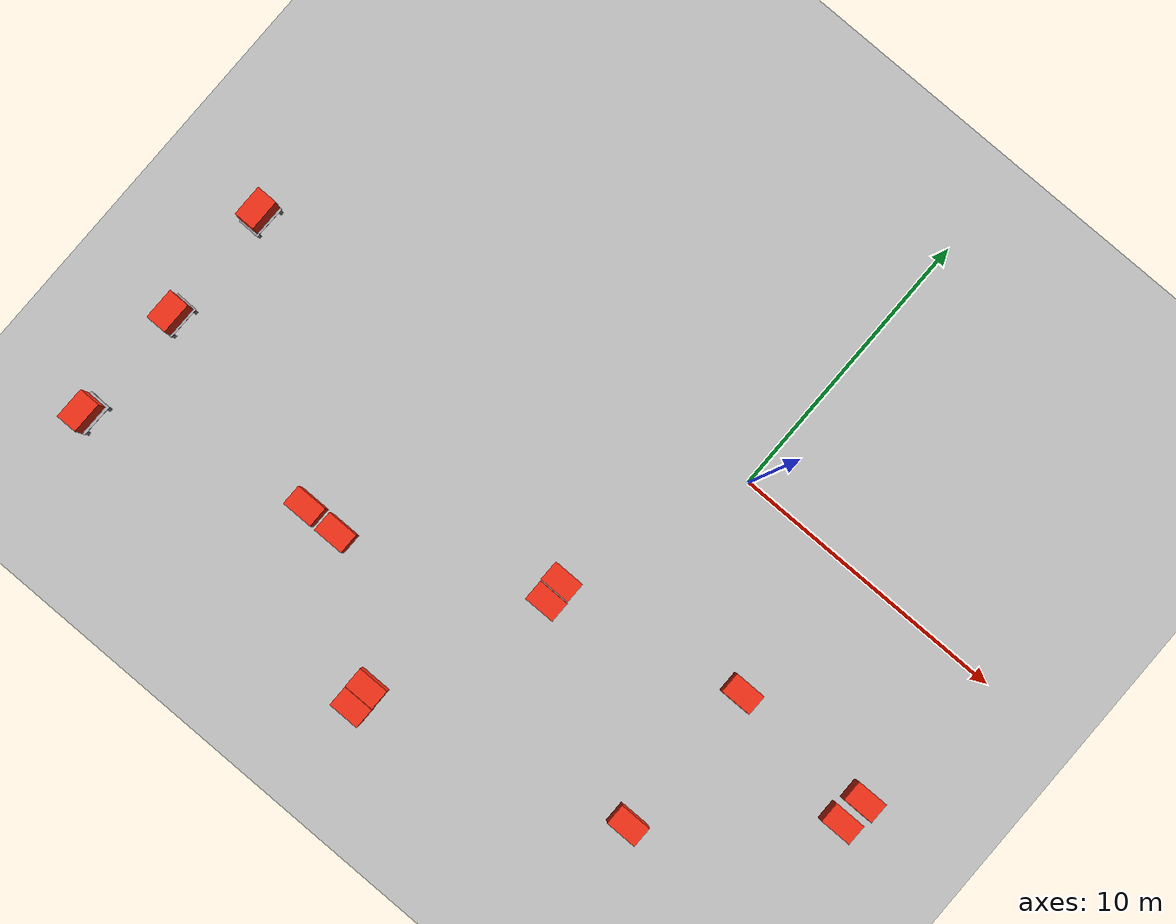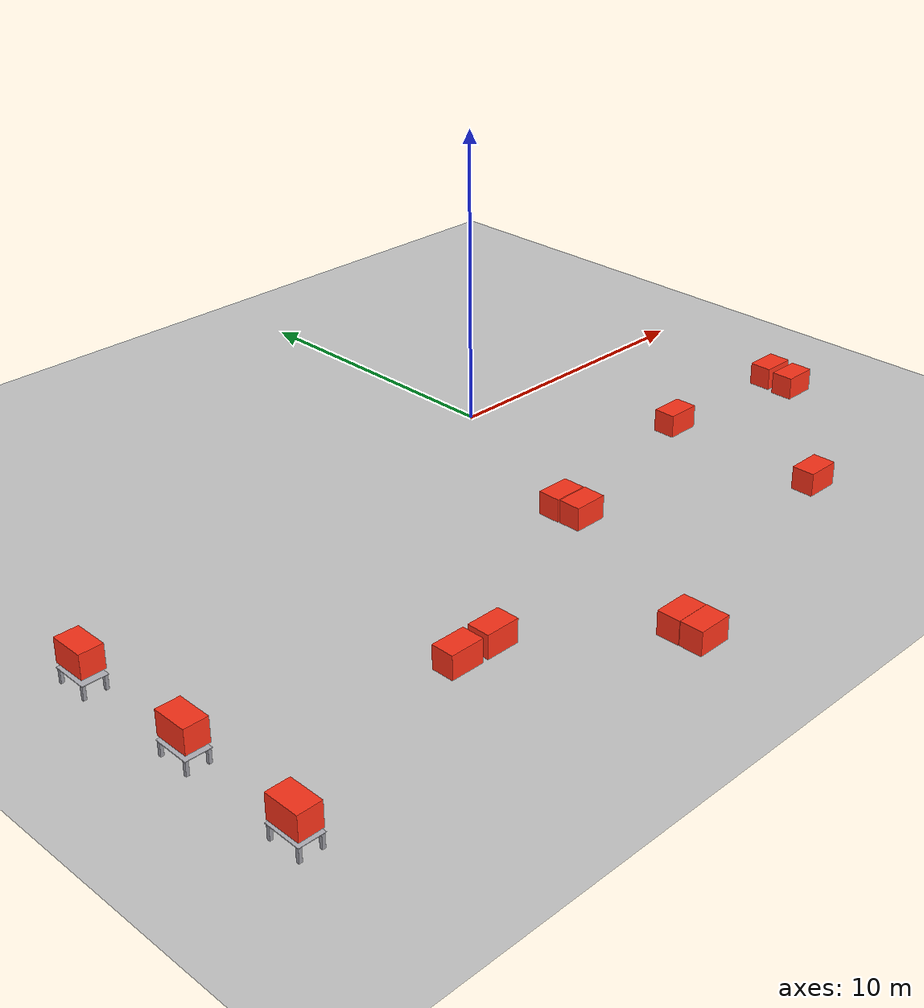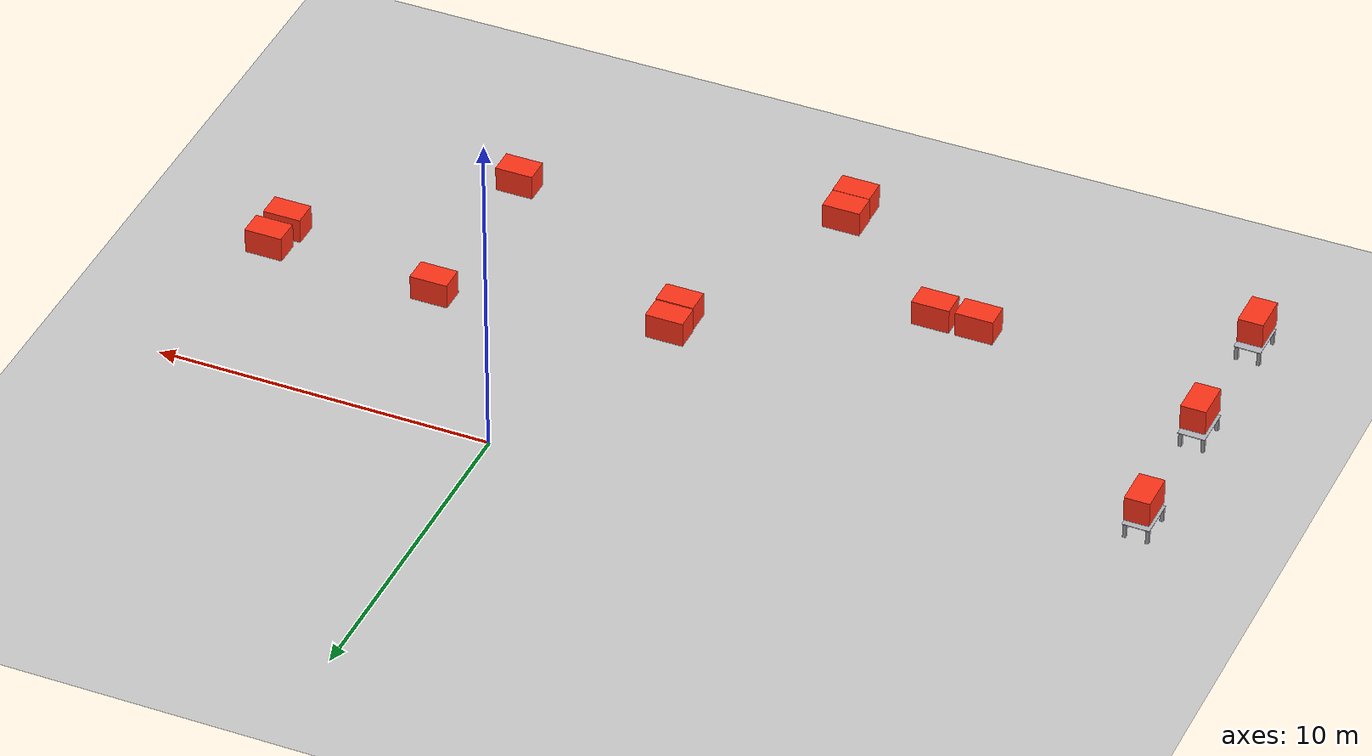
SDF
<sdf version="1.7">
 <world name="default">
  <model name="ground_plane">
   <static>1</static>
   <link name="link">
    <collision name="collision">
     <geometry><plane><normal>0 0 1</normal><size>100 100</size></plane></geometry>
     <surface>
      <contact><collide_bitmask>65535</collide_bitmask></contact>
      <friction><ode><mu>100</mu><mu2>50</mu2></ode></friction>
     </surface>
    </collision>
    <visual name="visual">
     <cast_shadows>0</cast_shadows>
     <geometry><plane><normal>0 0 1</normal><size>100 100</size></plane></geometry>
     <material>
      <script><uri>file://media/materials/scripts/gazebo.material</uri><name>Gazebo/Grey</name></script>
     </material>
    </visual>
   </link>
  </model>
  <model name="stand_1_clone_2">
   <static>0</static>
   <link name="base_link">
    <collision name="top_plate_col">
     <pose>0 0 0.46 0 -0 0</pose>
     <geometry><box><size>1.2 0.8 0.02</size></box></geometry>
    </collision>
    <visual name="top_plate_vis">
     <pose>0 0 0.46 0 -0 0</pose>
     <geometry><box><size>1.2 0.8 0.02</size></box></geometry>
     <material>
      <ambient>0.72 0.72 0.75 1</ambient>
      <diffuse>0.72 0.72 0.75 1</diffuse>
      <specular>0.5 0.5 0.5 1</specular>
     </material>
    </visual>
    <collision name="leg_fl_col">
     <pose>0.52 -0.33 0.225 0 -0 0</pose>
     <geometry><box><size>0.1 0.1 0.45</size></box></geometry>
    </collision>
    <visual name="leg_fl_vis">
     <pose>0.52 -0.33 0.225 0 -0 0</pose>
     <geometry><box><size>0.1 0.1 0.45</size></box></geometry>
     <material><ambient>0.6 0.6 0.63 1</ambient><diffuse>0.6 0.6 0.63 1</diffuse></material>
    </visual>
    <collision name="leg_fr_col">
     <pose>0.52 0.33 0.225 0 -0 0</pose>
     <geometry><box><size>0.1 0.1 0.45</size></box></geometry>
    </collision>
    <visual name="leg_fr_vis">
     <pose>0.52 0.33 0.225 0 -0 0</pose>
     <geometry><box><size>0.1 0.1 0.45</size></box></geometry>
     <material><ambient>0.6 0.6 0.63 1</ambient><diffuse>0.6 0.6 0.63 1</diffuse></material>
    </visual>
    <collision name="leg_rl_col">
     <pose>-0.52 -0.33 0.225 0 -0 0</pose>
     <geometry><box><size>0.1 0.1 0.45</size></box></geometry>
    </collision>
    <visual name="leg_rl_vis">
     <pose>-0.52 -0.33 0.225 0 -0 0</pose>
     <geometry><box><size>0.1 0.1 0.45</size></box></geometry>
     <material><ambient>0.6 0.6 0.63 1</ambient><diffuse>0.6 0.6 0.63 1</diffuse></material>
    </visual>
    <collision name="leg_rr_col">
     <pose>-0.52 0.33 0.225 0 -0 0</pose>
     <geometry><box><size>0.1 0.1 0.45</size></box></geometry>
    </collision>
    <visual name="leg_rr_vis">
     <pose>-0.52 0.33 0.225 0 -0 0</pose>
     <geometry><box><size>0.1 0.1 0.45</size></box></geometry>
     <material><ambient>0.6 0.6 0.63 1</ambient><diffuse>0.6 0.6 0.63 1</diffuse></material>
    </visual>
    <inertial>
     <mass>25</mass>
     <inertia><ixx>1.4</ixx><iyy>2.1</iyy><izz>3.2</izz><ixy>0</ixy><ixz>0</ixz><iyz>0</iyz></inertia>
    </inertial>
   </link>
   <pose>-17.6177 -3.70917 0 -1e-06 -1e-06 -1.58623</pose>
  </model>
  <model name="stand_1_clone_3">
   <static>0</static>
   <link name="base_link">
    <collision name="top_plate_col">
     <pose>0 0 0.46 0 -0 0</pose>
     <geometry><box><size>1.2 0.8 0.02</size></box></geometry>
    </collision>
    <visual name="top_plate_vis">
     <pose>0 0 0.46 0 -0 0</pose>
     <geometry><box><size>1.2 0.8 0.02</size></box></geometry>
     <material>
      <ambient>0.72 0.72 0.75 1</ambient>
      <diffuse>0.72 0.72 0.75 1</diffuse>
      <specular>0.5 0.5 0.5 1</specular>
     </material>
    </visual>
    <collision name="leg_fl_col">
     <pose>0.52 -0.33 0.225 0 -0 0</pose>
     <geometry><box><size>0.1 0.1 0.45</size></box></geometry>
    </collision>
    <visual name="leg_fl_vis">
     <pose>0.52 -0.33 0.225 0 -0 0</pose>
     <geometry><box><size>0.1 0.1 0.45</size></box></geometry>
     <material><ambient>0.6 0.6 0.63 1</ambient><diffuse>0.6 0.6 0.63 1</diffuse></material>
    </visual>
    <collision name="leg_fr_col">
     <pose>0.52 0.33 0.225 0 -0 0</pose>
     <geometry><box><size>0.1 0.1 0.45</size></box></geometry>
    </collision>
    <visual name="leg_fr_vis">
     <pose>0.52 0.33 0.225 0 -0 0</pose>
     <geometry><box><size>0.1 0.1 0.45</size></box></geometry>
     <material><ambient>0.6 0.6 0.63 1</ambient><diffuse>0.6 0.6 0.63 1</diffuse></material>
    </visual>
    <collision name="leg_rl_col">
     <pose>-0.52 -0.33 0.225 0 -0 0</pose>
     <geometry><box><size>0.1 0.1 0.45</size></box></geometry>
    </collision>
    <visual name="leg_rl_vis">
     <pose>-0.52 -0.33 0.225 0 -0 0</pose>
     <geometry><box><size>0.1 0.1 0.45</size></box></geometry>
     <material><ambient>0.6 0.6 0.63 1</ambient><diffuse>0.6 0.6 0.63 1</diffuse></material>
    </visual>
    <collision name="leg_rr_col">
     <pose>-0.52 0.33 0.225 0 -0 0</pose>
     <geometry><box><size>0.1 0.1 0.45</size></box></geometry>
    </collision>
    <visual name="leg_rr_vis">
     <pose>-0.52 0.33 0.225 0 -0 0</pose>
     <geometry><box><size>0.1 0.1 0.45</size></box></geometry>
     <material><ambient>0.6 0.6 0.63 1</ambient><diffuse>0.6 0.6 0.63 1</diffuse></material>
    </visual>
    <inertial>
     <mass>25</mass>
     <inertia><ixx>1.4</ixx><iyy>2.1</iyy><izz>3.2</izz><ixy>0</ixy><ixz>0</ixz><iyz>0</iyz></inertia>
    </inertial>
   </link>
   <pose>-17.5863 -7.96395 -0 -0 -0 -1.58665</pose>
  </model>
  <model name="stand_1_clone_4">
   <static>0</static>
   <link name="base_link">
    <collision name="top_plate_col">
     <pose>0 0 0.46 0 -0 0</pose>
     <geometry><box><size>1.2 0.8 0.02</size></box></geometry>
    </collision>
    <visual name="top_plate_vis">
     <pose>0 0 0.46 0 -0 0</pose>
     <geometry><box><size>1.2 0.8 0.02</size></box></geometry>
     <material>
      <ambient>0.72 0.72 0.75 1</ambient>
      <diffuse>0.72 0.72 0.75 1</diffuse>
      <specular>0.5 0.5 0.5 1</specular>
     </material>
    </visual>
    <collision name="leg_fl_col">
     <pose>0.52 -0.33 0.225 0 -0 0</pose>
     <geometry><box><size>0.1 0.1 0.45</size></box></geometry>
    </collision>
    <visual name="leg_fl_vis">
     <pose>0.52 -0.33 0.225 0 -0 0</pose>
     <geometry><box><size>0.1 0.1 0.45</size></box></geometry>
     <material><ambient>0.6 0.6 0.63 1</ambient><diffuse>0.6 0.6 0.63 1</diffuse></material>
    </visual>
    <collision name="leg_fr_col">
     <pose>0.52 0.33 0.225 0 -0 0</pose>
     <geometry><box><size>0.1 0.1 0.45</size></box></geometry>
    </collision>
    <visual name="leg_fr_vis">
     <pose>0.52 0.33 0.225 0 -0 0</pose>
     <geometry><box><size>0.1 0.1 0.45</size></box></geometry>
     <material><ambient>0.6 0.6 0.63 1</ambient><diffuse>0.6 0.6 0.63 1</diffuse></material>
    </visual>
    <collision name="leg_rl_col">
     <pose>-0.52 -0.33 0.225 0 -0 0</pose>
     <geometry><box><size>0.1 0.1 0.45</size></box></geometry>
    </collision>
    <visual name="leg_rl_vis">
     <pose>-0.52 -0.33 0.225 0 -0 0</pose>
     <geometry><box><size>0.1 0.1 0.45</size></box></geometry>
     <material><ambient>0.6 0.6 0.63 1</ambient><diffuse>0.6 0.6 0.63 1</diffuse></material>
    </visual>
    <collision name="leg_rr_col">
     <pose>-0.52 0.33 0.225 0 -0 0</pose>
     <geometry><box><size>0.1 0.1 0.45</size></box></geometry>
    </collision>
    <visual name="leg_rr_vis">
     <pose>-0.52 0.33 0.225 0 -0 0</pose>
     <geometry><box><size>0.1 0.1 0.45</size></box></geometry>
     <material><ambient>0.6 0.6 0.63 1</ambient><diffuse>0.6 0.6 0.63 1</diffuse></material>
    </visual>
    <inertial>
     <mass>25</mass>
     <inertia><ixx>1.4</ixx><iyy>2.1</iyy><izz>3.2</izz><ixy>0</ixy><ixz>0</ixz><iyz>0</iyz></inertia>
    </inertial>
   </link>
   <pose>-17.6338 -12.1583 -3e-06 1e-05 -0 -1.58729</pose>
  </model>
  <model name="payload_box">
   <link name="link">
    <inertial>
     <mass>15</mass>
     <inertia><ixx>2.32332</ixx><ixy>0</ixy><ixz>0</ixz><iyy>1.43272</iyy><iyz>0</iyz><izz>2.2858</izz></inertia>
    </inertial>
    <visual name="visual">
     <geometry><box><size>0.747047 1.12719 0.766877</size></box></geometry>
     <material>
      <script><name>Gazebo/Grey</name><uri>file://media/materials/scripts/gazebo.material</uri></script>
      <shader type="pixel"><normal_map>__default__</normal_map></shader>
      <ambient>1 0.2 0.1 0</ambient>
      <diffuse>0.7 0.7 0.7 1</diffuse>
      <specular>0.01 0.01 0.01 1</specular>
      <emissive>0 0 0 1</emissive>
     </material>
    </visual>
    <collision name="collision">
     <geometry><box><size>0.747047 1.12719 0.766877</size></box></geometry>
     <surface>
      <friction>
       <ode><mu>1</mu><mu2>1</mu2><fdir1>0 0 0</fdir1><slip1>0</slip1><slip2>0</slip2></ode>
       <torsional>
        <coefficient>1</coefficient>
        <patch_radius>0</patch_radius>
        <surface_radius>0</surface_radius>
        <use_patch_radius>1</use_patch_radius>
        <ode><slip>0</slip></ode>
       </torsional>
      </friction>
      <bounce><restitution_coefficient>0</restitution_coefficient><threshold>1e+06</threshold></bounce>
      <contact>
       <collide_without_contact>0</collide_without_contact>
       <collide_without_contact_bitmask>1</collide_without_contact_bitmask>
       <collide_bitmask>1</collide_bitmask>
       <ode>
        <soft_cfm>0</soft_cfm>
        <soft_erp>0.2</soft_erp>
        <kp>1e+13</kp>
        <kd>1</kd>
        <max_vel>0.01</max_vel>
        <min_depth>0</min_depth>
       </ode>
       <bullet>
        <split_impulse>1</split_impulse>
        <split_impulse_penetration_threshold>-0.01</split_impulse_penetration_threshold>
        <soft_cfm>0</soft_cfm>
        <soft_erp>0.2</soft_erp>
        <kp>1e+13</kp>
        <kd>1</kd>
       </bullet>
      </contact>
     </surface>
    </collision>
   </link>
   <static>0</static>
   <pose>-17.6602 -12.1959 0.997472 2.4e-05 -7.3e-05 -0.004043</pose>
  </model>
  <model name="payload_box_clone">
   <link name="link">
    <inertial>
     <mass>15</mass>
     <inertia><ixx>2.32332</ixx><ixy>0</ixy><ixz>0</ixz><iyy>1.43272</iyy><iyz>0</iyz><izz>2.2858</izz></inertia>
    </inertial>
    <visual name="visual">
     <geometry><box><size>0.747047 1.12719 0.766877</size></box></geometry>
     <material>
      <script><name>Gazebo/Grey</name><uri>file://media/materials/scripts/gazebo.material</uri></script>
      <shader type="pixel"><normal_map>__default__</normal_map></shader>
      <ambient>1 0.2 0.1 0</ambient>
      <diffuse>0.7 0.7 0.7 1</diffuse>
      <specular>0.01 0.01 0.01 1</specular>
      <emissive>0 0 0 1</emissive>
     </material>
    </visual>
    <collision name="collision">
     <geometry><box><size>0.747047 1.12719 0.766877</size></box></geometry>
     <surface>
      <friction>
       <ode><mu>1</mu><mu2>1</mu2><fdir1>0 0 0</fdir1><slip1>0</slip1><slip2>0</slip2></ode>
       <torsional>
        <coefficient>1</coefficient>
        <patch_radius>0</patch_radius>
        <surface_radius>0</surface_radius>
        <use_patch_radius>1</use_patch_radius>
        <ode><slip>0</slip></ode>
       </torsional>
      </friction>
      <bounce><restitution_coefficient>0</restitution_coefficient><threshold>1e+06</threshold></bounce>
      <contact>
       <collide_without_contact>0</collide_without_contact>
       <collide_without_contact_bitmask>1</collide_without_contact_bitmask>
       <collide_bitmask>1</collide_bitmask>
       <ode>
        <soft_cfm>0</soft_cfm>
        <soft_erp>0.2</soft_erp>
        <kp>1e+13</kp>
        <kd>1</kd>
        <max_vel>0.01</max_vel>
        <min_depth>0</min_depth>
       </ode>
       <bullet>
        <split_impulse>1</split_impulse>
        <split_impulse_penetration_threshold>-0.01</split_impulse_penetration_threshold>
        <soft_cfm>0</soft_cfm>
        <soft_erp>0.2</soft_erp>
        <kp>1e+13</kp>
        <kd>1</kd>
       </bullet>
      </contact>
     </surface>
    </collision>
   </link>
   <static>0</static>
   <pose>-17.5844 -7.98384 0.99743 1.3e-05 -3.9e-05 -0.003706</pose>
  </model>
  <model name="payload_box_clone_0">
   <link name="link">
    <inertial>
     <mass>15</mass>
     <inertia><ixx>2.32332</ixx><ixy>0</ixy><ixz>0</ixz><iyy>1.43272</iyy><iyz>0</iyz><izz>2.2858</izz></inertia>
    </inertial>
    <visual name="visual">
     <geometry><box><size>0.747047 1.12719 0.766877</size></box></geometry>
     <material>
      <script><name>Gazebo/Grey</name><uri>file://media/materials/scripts/gazebo.material</uri></script>
      <shader type="pixel"><normal_map>__default__</normal_map></shader>
      <ambient>1 0.2 0.1 0</ambient>
      <diffuse>0.7 0.7 0.7 1</diffuse>
      <specular>0.01 0.01 0.01 1</specular>
      <emissive>0 0 0 1</emissive>
     </material>
    </visual>
    <collision name="collision">
     <geometry><box><size>0.747047 1.12719 0.766877</size></box></geometry>
     <surface>
      <friction>
       <ode><mu>1</mu><mu2>1</mu2><fdir1>0 0 0</fdir1><slip1>0</slip1><slip2>0</slip2></ode>
       <torsional>
        <coefficient>1</coefficient>
        <patch_radius>0</patch_radius>
        <surface_radius>0</surface_radius>
        <use_patch_radius>1</use_patch_radius>
        <ode><slip>0</slip></ode>
       </torsional>
      </friction>
      <bounce><restitution_coefficient>0</restitution_coefficient><threshold>1e+06</threshold></bounce>
      <contact>
       <collide_without_contact>0</collide_without_contact>
       <collide_without_contact_bitmask>1</collide_without_contact_bitmask>
       <collide_bitmask>1</collide_bitmask>
       <ode>
        <soft_cfm>0</soft_cfm>
        <soft_erp>0.2</soft_erp>
        <kp>1e+13</kp>
        <kd>1</kd>
        <max_vel>0.01</max_vel>
        <min_depth>0</min_depth>
       </ode>
       <bullet>
        <split_impulse>1</split_impulse>
        <split_impulse_penetration_threshold>-0.01</split_impulse_penetration_threshold>
        <soft_cfm>0</soft_cfm>
        <soft_erp>0.2</soft_erp>
        <kp>1e+13</kp>
        <kd>1</kd>
       </bullet>
      </contact>
     </surface>
    </collision>
   </link>
   <static>0</static>
   <pose>-17.615 -3.68922 0.997434 2e-06 1.9e-05 -0.000489</pose>
  </model>
  <model name="payload_box_clone_5">
   <link name="link">
    <inertial>
     <mass>15</mass>
     <inertia><ixx>2.32332</ixx><ixy>0</ixy><ixz>0</ixz><iyy>1.43272</iyy><iyz>0</iyz><izz>2.2858</izz></inertia>
    </inertial>
    <visual name="visual">
     <geometry><box><size>0.747047 1.12719 0.766877</size></box></geometry>
     <material>
      <script><name>Gazebo/Grey</name><uri>file://media/materials/scripts/gazebo.material</uri></script>
      <shader type="pixel"><normal_map>__default__</normal_map></shader>
      <ambient>1 0.2 0.1 0</ambient>
      <diffuse>0.7 0.7 0.7 1</diffuse>
      <specular>0.01 0.01 0.01 1</specular>
      <emissive>0 0 0 1</emissive>
     </material>
    </visual>
    <collision name="collision">
     <geometry><box><size>0.747047 1.12719 0.766877</size></box></geometry>
     <surface>
      <friction>
       <ode><mu>1</mu><mu2>1</mu2><fdir1>0 0 0</fdir1><slip1>0</slip1><slip2>0</slip2></ode>
       <torsional>
        <coefficient>1</coefficient>
        <patch_radius>0</patch_radius>
        <surface_radius>0</surface_radius>
        <use_patch_radius>1</use_patch_radius>
        <ode><slip>0</slip></ode>
       </torsional>
      </friction>
      <bounce><restitution_coefficient>0</restitution_coefficient><threshold>1e+06</threshold></bounce>
      <contact>
       <collide_without_contact>0</collide_without_contact>
       <collide_without_contact_bitmask>1</collide_without_contact_bitmask>
       <collide_bitmask>1</collide_bitmask>
       <ode>
        <soft_cfm>0</soft_cfm>
        <soft_erp>0.2</soft_erp>
        <kp>1e+13</kp>
        <kd>1</kd>
        <max_vel>0.01</max_vel>
        <min_depth>0</min_depth>
       </ode>
       <bullet>
        <split_impulse>1</split_impulse>
        <split_impulse_penetration_threshold>-0.01</split_impulse_penetration_threshold>
        <soft_cfm>0</soft_cfm>
        <soft_erp>0.2</soft_erp>
        <kp>1e+13</kp>
        <kd>1</kd>
       </bullet>
      </contact>
     </surface>
    </collision>
   </link>
   <static>0</static>
   <pose>-5.04823 -13.7583 0.383438 0 -0 1.5709</pose>
  </model>
  <model name="payload_box_clone_5_clone">
   <link name="link">
    <inertial>
     <mass>15</mass>
     <inertia><ixx>2.32332</ixx><ixy>0</ixy><ixz>0</ixz><iyy>1.43272</iyy><iyz>0</iyz><izz>2.2858</izz></inertia>
    </inertial>
    <visual name="visual">
     <geometry><box><size>0.747047 1.12719 0.766877</size></box></geometry>
     <material>
      <script><name>Gazebo/Grey</name><uri>file://media/materials/scripts/gazebo.material</uri></script>
      <shader type="pixel"><normal_map>__default__</normal_map></shader>
      <ambient>1 0.2 0.1 0</ambient>
      <diffuse>0.7 0.7 0.7 1</diffuse>
      <specular>0.01 0.01 0.01 1</specular>
      <emissive>0 0 0 1</emissive>
     </material>
    </visual>
    <collision name="collision">
     <geometry><box><size>0.747047 1.12719 0.766877</size></box></geometry>
     <surface>
      <friction>
       <ode><mu>1</mu><mu2>1</mu2><fdir1>0 0 0</fdir1><slip1>0</slip1><slip2>0</slip2></ode>
       <torsional>
        <coefficient>1</coefficient>
        <patch_radius>0</patch_radius>
        <surface_radius>0</surface_radius>
        <use_patch_radius>1</use_patch_radius>
        <ode><slip>0</slip></ode>
       </torsional>
      </friction>
      <bounce><restitution_coefficient>0</restitution_coefficient><threshold>1e+06</threshold></bounce>
      <contact>
       <collide_without_contact>0</collide_without_contact>
       <collide_without_contact_bitmask>1</collide_without_contact_bitmask>
       <collide_bitmask>1</collide_bitmask>
       <ode>
        <soft_cfm>0</soft_cfm>
        <soft_erp>0.2</soft_erp>
        <kp>1e+13</kp>
        <kd>1</kd>
        <max_vel>0.01</max_vel>
        <min_depth>0</min_depth>
       </ode>
       <bullet>
        <split_impulse>1</split_impulse>
        <split_impulse_penetration_threshold>-0.01</split_impulse_penetration_threshold>
        <soft_cfm>0</soft_cfm>
        <soft_erp>0.2</soft_erp>
        <kp>1e+13</kp>
        <kd>1</kd>
       </bullet>
      </contact>
     </surface>
    </collision>
   </link>
   <static>0</static>
   <pose>-5.06235 -13.0022 0.383438 0 -0 1.5709</pose>
  </model>
  <model name="payload_box_clone_5_clone_0">
   <link name="link">
    <inertial>
     <mass>15</mass>
     <inertia><ixx>2.32332</ixx><ixy>0</ixy><ixz>0</ixz><iyy>1.43272</iyy><iyz>0</iyz><izz>2.2858</izz></inertia>
    </inertial>
    <visual name="visual">
     <geometry><box><size>0.747047 1.12719 0.766877</size></box></geometry>
     <material>
      <script><name>Gazebo/Grey</name><uri>file://media/materials/scripts/gazebo.material</uri></script>
      <shader type="pixel"><normal_map>__default__</normal_map></shader>
      <ambient>1 0.2 0.1 0</ambient>
      <diffuse>0.7 0.7 0.7 1</diffuse>
      <specular>0.01 0.01 0.01 1</specular>
      <emissive>0 0 0 1</emissive>
     </material>
    </visual>
    <collision name="collision">
     <geometry><box><size>0.747047 1.12719 0.766877</size></box></geometry>
     <surface>
      <friction>
       <ode><mu>1</mu><mu2>1</mu2><fdir1>0 0 0</fdir1><slip1>0</slip1><slip2>0</slip2></ode>
       <torsional>
        <coefficient>1</coefficient>
        <patch_radius>0</patch_radius>
        <surface_radius>0</surface_radius>
        <use_patch_radius>1</use_patch_radius>
        <ode><slip>0</slip></ode>
       </torsional>
      </friction>
      <bounce><restitution_coefficient>0</restitution_coefficient><threshold>1e+06</threshold></bounce>
      <contact>
       <collide_without_contact>0</collide_without_contact>
       <collide_without_contact_bitmask>1</collide_without_contact_bitmask>
       <collide_bitmask>1</collide_bitmask>
       <ode>
        <soft_cfm>0</soft_cfm>
        <soft_erp>0.2</soft_erp>
        <kp>1e+13</kp>
        <kd>1</kd>
        <max_vel>0.01</max_vel>
        <min_depth>0</min_depth>
       </ode>
       <bullet>
        <split_impulse>1</split_impulse>
        <split_impulse_penetration_threshold>-0.01</split_impulse_penetration_threshold>
        <soft_cfm>0</soft_cfm>
        <soft_erp>0.2</soft_erp>
        <kp>1e+13</kp>
        <kd>1</kd>
       </bullet>
      </contact>
     </surface>
    </collision>
   </link>
   <static>0</static>
   <pose>4.06717 -10.8872 0.383438 0 -0 1.5709</pose>
  </model>
  <model name="payload_box_clone_5_clone_1">
   <link name="link">
    <inertial>
     <mass>15</mass>
     <inertia><ixx>2.32332</ixx><ixy>0</ixy><ixz>0</ixz><iyy>1.43272</iyy><iyz>0</iyz><izz>2.2858</izz></inertia>
    </inertial>
    <visual name="visual">
     <geometry><box><size>0.747047 1.12719 0.766877</size></box></geometry>
     <material>
      <script><name>Gazebo/Grey</name><uri>file://media/materials/scripts/gazebo.material</uri></script>
      <shader type="pixel"><normal_map>__default__</normal_map></shader>
      <ambient>1 0.2 0.1 0</ambient>
      <diffuse>0.7 0.7 0.7 1</diffuse>
      <specular>0.01 0.01 0.01 1</specular>
      <emissive>0 0 0 1</emissive>
     </material>
    </visual>
    <collision name="collision">
     <geometry><box><size>0.747047 1.12719 0.766877</size></box></geometry>
     <surface>
      <friction>
       <ode><mu>1</mu><mu2>1</mu2><fdir1>0 0 0</fdir1><slip1>0</slip1><slip2>0</slip2></ode>
       <torsional>
        <coefficient>1</coefficient>
        <patch_radius>0</patch_radius>
        <surface_radius>0</surface_radius>
        <use_patch_radius>1</use_patch_radius>
        <ode><slip>0</slip></ode>
       </torsional>
      </friction>
      <bounce><restitution_coefficient>0</restitution_coefficient><threshold>1e+06</threshold></bounce>
      <contact>
       <collide_without_contact>0</collide_without_contact>
       <collide_without_contact_bitmask>1</collide_without_contact_bitmask>
       <collide_bitmask>1</collide_bitmask>
       <ode>
        <soft_cfm>0</soft_cfm>
        <soft_erp>0.2</soft_erp>
        <kp>1e+13</kp>
        <kd>1</kd>
        <max_vel>0.01</max_vel>
        <min_depth>0</min_depth>
       </ode>
       <bullet>
        <split_impulse>1</split_impulse>
        <split_impulse_penetration_threshold>-0.01</split_impulse_penetration_threshold>
        <soft_cfm>0</soft_cfm>
        <soft_erp>0.2</soft_erp>
        <kp>1e+13</kp>
        <kd>1</kd>
       </bullet>
      </contact>
     </surface>
    </collision>
   </link>
   <static>0</static>
   <pose>-10.3483 -9.87985 0.383439 0 -0 1.57085</pose>
  </model>
  <model name="payload_box_clone_5_clone_2">
   <link name="link">
    <inertial>
     <mass>15</mass>
     <inertia><ixx>2.32332</ixx><ixy>0</ixy><ixz>0</ixz><iyy>1.43272</iyy><iyz>0</iyz><izz>2.2858</izz></inertia>
    </inertial>
    <visual name="visual">
     <geometry><box><size>0.747047 1.12719 0.766877</size></box></geometry>
     <material>
      <script><name>Gazebo/Grey</name><uri>file://media/materials/scripts/gazebo.material</uri></script>
      <shader type="pixel"><normal_map>__default__</normal_map></shader>
      <ambient>1 0.2 0.1 0</ambient>
      <diffuse>0.7 0.7 0.7 1</diffuse>
      <specular>0.01 0.01 0.01 1</specular>
      <emissive>0 0 0 1</emissive>
     </material>
    </visual>
    <collision name="collision">
     <geometry><box><size>0.747047 1.12719 0.766877</size></box></geometry>
     <surface>
      <friction>
       <ode><mu>1</mu><mu2>1</mu2><fdir1>0 0 0</fdir1><slip1>0</slip1><slip2>0</slip2></ode>
       <torsional>
        <coefficient>1</coefficient>
        <patch_radius>0</patch_radius>
        <surface_radius>0</surface_radius>
        <use_patch_radius>1</use_patch_radius>
        <ode><slip>0</slip></ode>
       </torsional>
      </friction>
      <bounce><restitution_coefficient>0</restitution_coefficient><threshold>1e+06</threshold></bounce>
      <contact>
       <collide_without_contact>0</collide_without_contact>
       <collide_without_contact_bitmask>1</collide_without_contact_bitmask>
       <collide_bitmask>1</collide_bitmask>
       <ode>
        <soft_cfm>0</soft_cfm>
        <soft_erp>0.2</soft_erp>
        <kp>1e+13</kp>
        <kd>1</kd>
        <max_vel>0.01</max_vel>
        <min_depth>0</min_depth>
       </ode>
       <bullet>
        <split_impulse>1</split_impulse>
        <split_impulse_penetration_threshold>-0.01</split_impulse_penetration_threshold>
        <soft_cfm>0</soft_cfm>
        <soft_erp>0.2</soft_erp>
        <kp>1e+13</kp>
        <kd>1</kd>
       </bullet>
      </contact>
     </surface>
    </collision>
   </link>
   <static>0</static>
   <pose>-9.04688 -9.87985 0.383439 0 -0 1.57085</pose>
  </model>
  <model name="payload_box_clone_5_clone_3">
   <link name="link">
    <inertial>
     <mass>15</mass>
     <inertia><ixx>2.32332</ixx><ixy>0</ixy><ixz>0</ixz><iyy>1.43272</iyy><iyz>0</iyz><izz>2.2858</izz></inertia>
    </inertial>
    <visual name="visual">
     <geometry><box><size>0.747047 1.12719 0.766877</size></box></geometry>
     <material>
      <script><name>Gazebo/Grey</name><uri>file://media/materials/scripts/gazebo.material</uri></script>
      <shader type="pixel"><normal_map>__default__</normal_map></shader>
      <ambient>1 0.2 0.1 0</ambient>
      <diffuse>0.7 0.7 0.7 1</diffuse>
      <specular>0.01 0.01 0.01 1</specular>
      <emissive>0 0 0 1</emissive>
     </material>
    </visual>
    <collision name="collision">
     <geometry><box><size>0.747047 1.12719 0.766877</size></box></geometry>
     <surface>
      <friction>
       <ode><mu>1</mu><mu2>1</mu2><fdir1>0 0 0</fdir1><slip1>0</slip1><slip2>0</slip2></ode>
       <torsional>
        <coefficient>1</coefficient>
        <patch_radius>0</patch_radius>
        <surface_radius>0</surface_radius>
        <use_patch_radius>1</use_patch_radius>
        <ode><slip>0</slip></ode>
       </torsional>
      </friction>
      <bounce><restitution_coefficient>0</restitution_coefficient><threshold>1e+06</threshold></bounce>
      <contact>
       <collide_without_contact>0</collide_without_contact>
       <collide_without_contact_bitmask>1</collide_without_contact_bitmask>
       <collide_bitmask>1</collide_bitmask>
       <ode>
        <soft_cfm>0</soft_cfm>
        <soft_erp>0.2</soft_erp>
        <kp>1e+13</kp>
        <kd>1</kd>
        <max_vel>0.01</max_vel>
        <min_depth>0</min_depth>
       </ode>
       <bullet>
        <split_impulse>1</split_impulse>
        <split_impulse_penetration_threshold>-0.01</split_impulse_penetration_threshold>
        <soft_cfm>0</soft_cfm>
        <soft_erp>0.2</soft_erp>
        <kp>1e+13</kp>
        <kd>1</kd>
       </bullet>
      </contact>
     </surface>
    </collision>
   </link>
   <static>0</static>
   <pose>-2.54038 -6.392 0.383438 0 -0 1.5709</pose>
  </model>
  <model name="payload_box_clone_5_clone_4">
   <link name="link">
    <inertial>
     <mass>15</mass>
     <inertia><ixx>2.32332</ixx><ixy>0</ixy><ixz>0</ixz><iyy>1.43272</iyy><iyz>0</iyz><izz>2.2858</izz></inertia>
    </inertial>
    <visual name="visual">
     <geometry><box><size>0.747047 1.12719 0.766877</size></box></geometry>
     <material>
      <script><name>Gazebo/Grey</name><uri>file://media/materials/scripts/gazebo.material</uri></script>
      <shader type="pixel"><normal_map>__default__</normal_map></shader>
      <ambient>1 0.2 0.1 0</ambient>
      <diffuse>0.7 0.7 0.7 1</diffuse>
      <specular>0.01 0.01 0.01 1</specular>
      <emissive>0 0 0 1</emissive>
     </material>
    </visual>
    <collision name="collision">
     <geometry><box><size>0.747047 1.12719 0.766877</size></box></geometry>
     <surface>
      <friction>
       <ode><mu>1</mu><mu2>1</mu2><fdir1>0 0 0</fdir1><slip1>0</slip1><slip2>0</slip2></ode>
       <torsional>
        <coefficient>1</coefficient>
        <patch_radius>0</patch_radius>
        <surface_radius>0</surface_radius>
        <use_patch_radius>1</use_patch_radius>
        <ode><slip>0</slip></ode>
       </torsional>
      </friction>
      <bounce><restitution_coefficient>0</restitution_coefficient><threshold>1e+06</threshold></bounce>
      <contact>
       <collide_without_contact>0</collide_without_contact>
       <collide_without_contact_bitmask>1</collide_without_contact_bitmask>
       <collide_bitmask>1</collide_bitmask>
       <ode>
        <soft_cfm>0</soft_cfm>
        <soft_erp>0.2</soft_erp>
        <kp>1e+13</kp>
        <kd>1</kd>
        <max_vel>0.01</max_vel>
        <min_depth>0</min_depth>
       </ode>
       <bullet>
        <split_impulse>1</split_impulse>
        <split_impulse_penetration_threshold>-0.01</split_impulse_penetration_threshold>
        <soft_cfm>0</soft_cfm>
        <soft_erp>0.2</soft_erp>
        <kp>1e+13</kp>
        <kd>1</kd>
       </bullet>
      </contact>
     </surface>
    </collision>
   </link>
   <static>0</static>
   <pose>-2.51466 -7.17386 0.383438 0 -0 1.5709</pose>
  </model>
  <model name="payload_box_clone_5_clone_5">
   <link name="link">
    <inertial>
     <mass>15</mass>
     <inertia><ixx>2.32332</ixx><ixy>0</ixy><ixz>0</ixz><iyy>1.43272</iyy><iyz>0</iyz><izz>2.2858</izz></inertia>
    </inertial>
    <visual name="visual">
     <geometry><box><size>0.747047 1.12719 0.766877</size></box></geometry>
     <material>
      <script><name>Gazebo/Grey</name><uri>file://media/materials/scripts/gazebo.material</uri></script>
      <shader type="pixel"><normal_map>__default__</normal_map></shader>
      <ambient>1 0.2 0.1 0</ambient>
      <diffuse>0.7 0.7 0.7 1</diffuse>
      <specular>0.01 0.01 0.01 1</specular>
      <emissive>0 0 0 1</emissive>
     </material>
    </visual>
    <collision name="collision">
     <geometry><box><size>0.747047 1.12719 0.766877</size></box></geometry>
     <surface>
      <friction>
       <ode><mu>1</mu><mu2>1</mu2><fdir1>0 0 0</fdir1><slip1>0</slip1><slip2>0</slip2></ode>
       <torsional>
        <coefficient>1</coefficient>
        <patch_radius>0</patch_radius>
        <surface_radius>0</surface_radius>
        <use_patch_radius>1</use_patch_radius>
        <ode><slip>0</slip></ode>
       </torsional>
      </friction>
      <bounce><restitution_coefficient>0</restitution_coefficient><threshold>1e+06</threshold></bounce>
      <contact>
       <collide_without_contact>0</collide_without_contact>
       <collide_without_contact_bitmask>1</collide_without_contact_bitmask>
       <collide_bitmask>1</collide_bitmask>
       <ode>
        <soft_cfm>0</soft_cfm>
        <soft_erp>0.2</soft_erp>
        <kp>1e+13</kp>
        <kd>1</kd>
        <max_vel>0.01</max_vel>
        <min_depth>0</min_depth>
       </ode>
       <bullet>
        <split_impulse>1</split_impulse>
        <split_impulse_penetration_threshold>-0.01</split_impulse_penetration_threshold>
        <soft_cfm>0</soft_cfm>
        <soft_erp>0.2</soft_erp>
        <kp>1e+13</kp>
        <kd>1</kd>
       </bullet>
      </contact>
     </surface>
    </collision>
   </link>
   <static>0</static>
   <pose>9.18464 -6.43208 0.383438 0 -0 1.5709</pose>
  </model>
  <model name="payload_box_clone_5_clone_6">
   <link name="link">
    <inertial>
     <mass>15</mass>
     <inertia><ixx>2.32332</ixx><ixy>0</ixy><ixz>0</ixz><iyy>1.43272</iyy><iyz>0</iyz><izz>2.2858</izz></inertia>
    </inertial>
    <visual name="visual">
     <geometry><box><size>0.747047 1.12719 0.766877</size></box></geometry>
     <material>
      <script><name>Gazebo/Grey</name><uri>file://media/materials/scripts/gazebo.material</uri></script>
      <shader type="pixel"><normal_map>__default__</normal_map></shader>
      <ambient>1 0.2 0.1 0</ambient>
      <diffuse>0.7 0.7 0.7 1</diffuse>
      <specular>0.01 0.01 0.01 1</specular>
      <emissive>0 0 0 1</emissive>
     </material>
    </visual>
    <collision name="collision">
     <geometry><box><size>0.747047 1.12719 0.766877</size></box></geometry>
     <surface>
      <friction>
       <ode><mu>1</mu><mu2>1</mu2><fdir1>0 0 0</fdir1><slip1>0</slip1><slip2>0</slip2></ode>
       <torsional>
        <coefficient>1</coefficient>
        <patch_radius>0</patch_radius>
        <surface_radius>0</surface_radius>
        <use_patch_radius>1</use_patch_radius>
        <ode><slip>0</slip></ode>
       </torsional>
      </friction>
      <bounce><restitution_coefficient>0</restitution_coefficient><threshold>1e+06</threshold></bounce>
      <contact>
       <collide_without_contact>0</collide_without_contact>
       <collide_without_contact_bitmask>1</collide_without_contact_bitmask>
       <collide_bitmask>1</collide_bitmask>
       <ode>
        <soft_cfm>0</soft_cfm>
        <soft_erp>0.2</soft_erp>
        <kp>1e+13</kp>
        <kd>1</kd>
        <max_vel>0.01</max_vel>
        <min_depth>0</min_depth>
       </ode>
       <bullet>
        <split_impulse>1</split_impulse>
        <split_impulse_penetration_threshold>-0.01</split_impulse_penetration_threshold>
        <soft_cfm>0</soft_cfm>
        <soft_erp>0.2</soft_erp>
        <kp>1e+13</kp>
        <kd>1</kd>
       </bullet>
      </contact>
     </surface>
    </collision>
   </link>
   <static>0</static>
   <pose>9.28893 -5.44982 0.383438 -0 3e-06 1.57072</pose>
  </model>
  <model name="payload_box_clone_5_clone_7">
   <link name="link">
    <inertial>
     <mass>15</mass>
     <inertia><ixx>2.32332</ixx><ixy>0</ixy><ixz>0</ixz><iyy>1.43272</iyy><iyz>0</iyz><izz>2.2858</izz></inertia>
    </inertial>
    <visual name="visual">
     <geometry><box><size>0.747047 1.12719 0.766877</size></box></geometry>
     <material>
      <script><name>Gazebo/Grey</name><uri>file://media/materials/scripts/gazebo.material</uri></script>
      <shader type="pixel"><normal_map>__default__</normal_map></shader>
      <ambient>1 0.2 0.1 0</ambient>
      <diffuse>0.7 0.7 0.7 1</diffuse>
      <specular>0.01 0.01 0.01 1</specular>
      <emissive>0 0 0 1</emissive>
     </material>
    </visual>
    <collision name="collision">
     <geometry><box><size>0.747047 1.12719 0.766877</size></box></geometry>
     <surface>
      <friction>
       <ode><mu>1</mu><mu2>1</mu2><fdir1>0 0 0</fdir1><slip1>0</slip1><slip2>0</slip2></ode>
       <torsional>
        <coefficient>1</coefficient>
        <patch_radius>0</patch_radius>
        <surface_radius>0</surface_radius>
        <use_patch_radius>1</use_patch_radius>
        <ode><slip>0</slip></ode>
       </torsional>
      </friction>
      <bounce><restitution_coefficient>0</restitution_coefficient><threshold>1e+06</threshold></bounce>
      <contact>
       <collide_without_contact>0</collide_without_contact>
       <collide_without_contact_bitmask>1</collide_without_contact_bitmask>
       <collide_bitmask>1</collide_bitmask>
       <ode>
        <soft_cfm>0</soft_cfm>
        <soft_erp>0.2</soft_erp>
        <kp>1e+13</kp>
        <kd>1</kd>
        <max_vel>0.01</max_vel>
        <min_depth>0</min_depth>
       </ode>
       <bullet>
        <split_impulse>1</split_impulse>
        <split_impulse_penetration_threshold>-0.01</split_impulse_penetration_threshold>
        <soft_cfm>0</soft_cfm>
        <soft_erp>0.2</soft_erp>
        <kp>1e+13</kp>
        <kd>1</kd>
       </bullet>
      </contact>
     </surface>
    </collision>
   </link>
   <static>0</static>
   <pose>4.14763 -5.3569 0.383438 0 -0 1.5709</pose>
  </model>
 </world>
</sdf>
